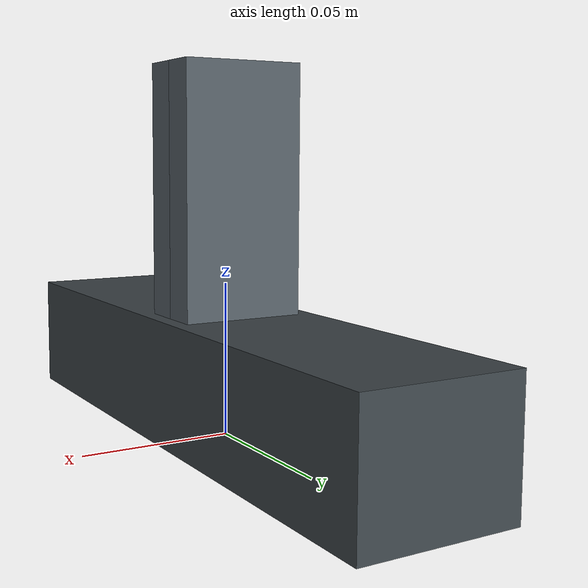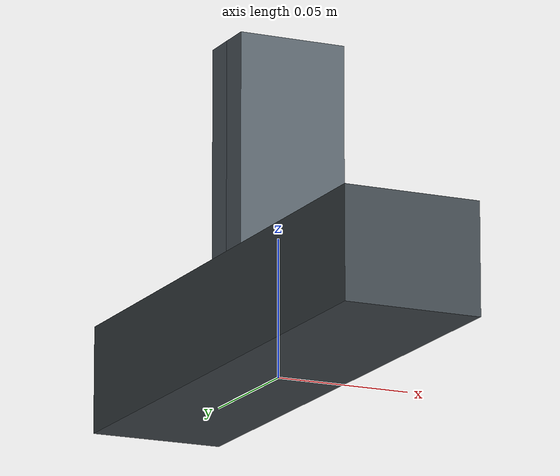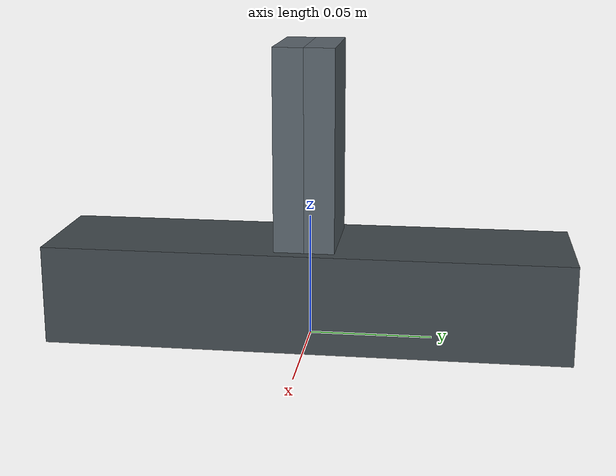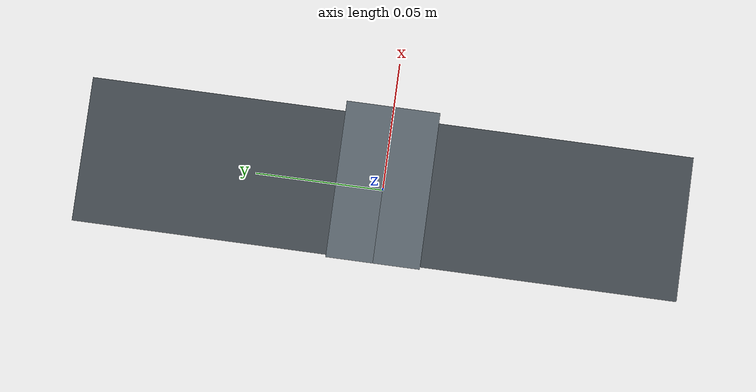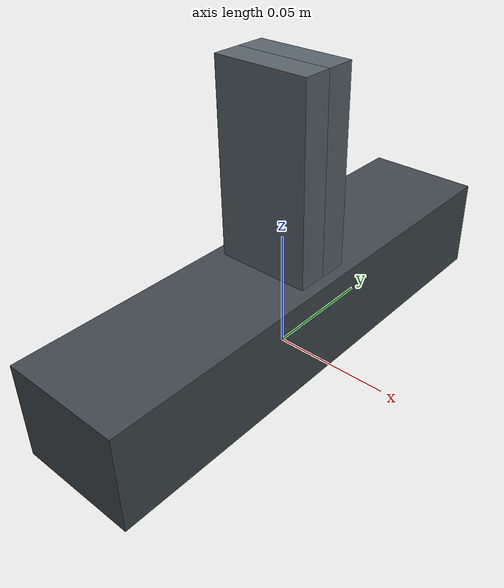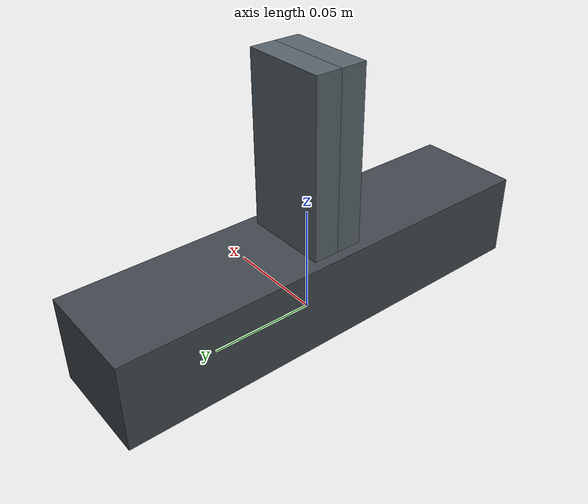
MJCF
<mujoco model="generic jaw with explicit ideal closed-grasp constraint">
  <compiler angle="radian" autolimits="true" />
  <option />
  <default>
    <joint damping="1" armature=".01" />
  </default>
  <asset />
  <worldbody>
    <body name="hand">
      <geom type="box" size=".025 .105 .02" pos="0 0 .02" mass=".65" rgba=".25 .28 .30 1" />
      <body name="left_finger" pos="0 0 .04">
        <joint name="finger_joint1" type="slide" axis="0 1 0" range="0 .09" />
        <geom type="box" size=".02 .006 .04" pos="0 .006 .04" mass=".10" rgba=".35 .39 .42 1" priority="1" solref=".002 1" solimp=".99 .999 .001" />
      </body>
      <body name="right_finger" pos="0 0 .04" quat="0 0 0 1">
        <joint name="finger_joint2" type="slide" axis="0 1 0" range="0 .09" />
        <geom type="box" size=".02 .006 .04" pos="0 .006 .04" mass=".10" rgba=".35 .39 .42 1" priority="1" solref=".002 1" solimp=".99 .999 .001" />
      </body>
    </body>
  </worldbody>
  <contact>
    <exclude body1="hand" body2="left_finger" />
    <exclude body1="hand" body2="right_finger" />
  </contact>
  <tendon>
    <fixed name="split">
      <joint joint="finger_joint1" coef=".5" />
      <joint joint="finger_joint2" coef=".5" />
    </fixed>
  </tendon>
  <equality>
    <joint joint1="finger_joint1" joint2="finger_joint2" solref=".005 1" />
    <weld name="ideal_grasp" body1="hand" body2="object" active="false" solref=".002 1" solimp=".99 .999 .001" torquescale=".05" />
  </equality>
  <actuator>
    <general name="close" tendon="split" biastype="affine" />
  </actuator>
</mujoco>
